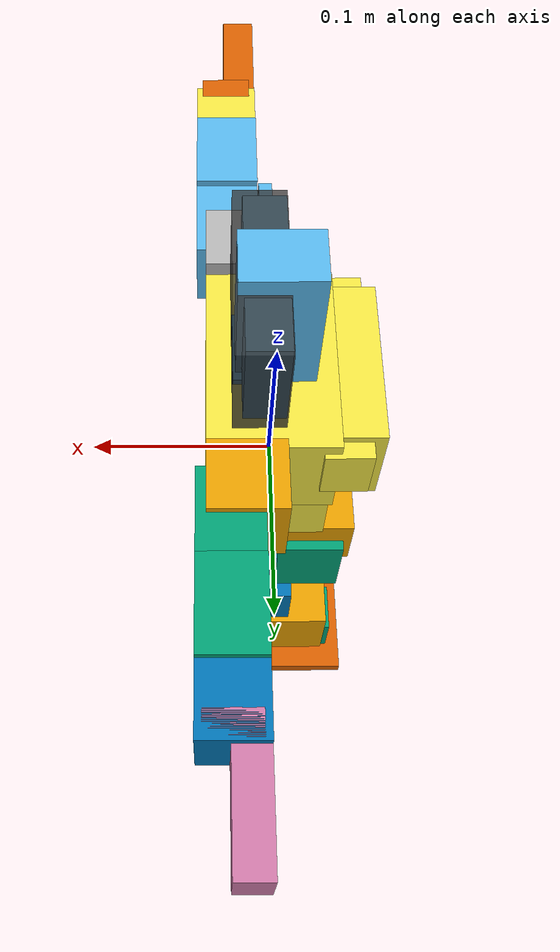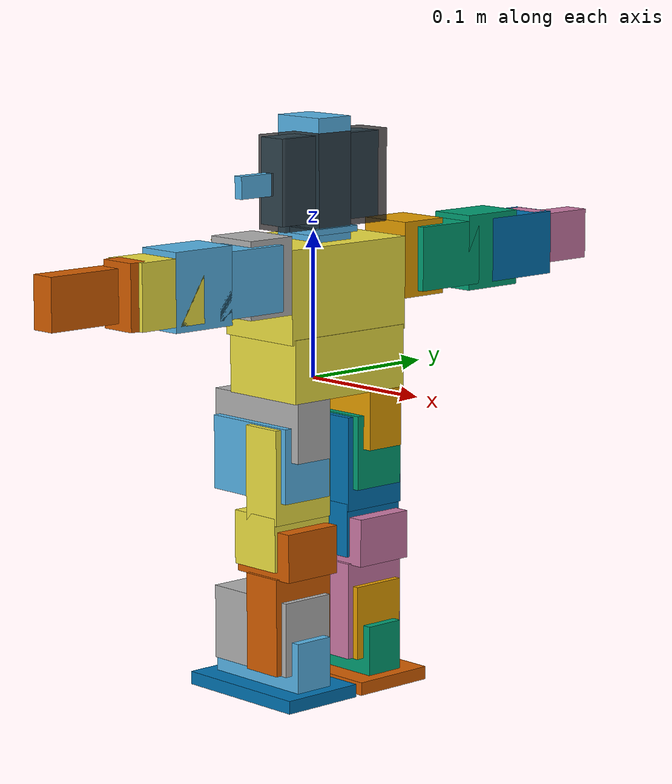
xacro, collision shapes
<?xml version="1.0"?>
<robot xmlns:xacro="http://www.ros.org/wiki/xacro" name="bioloid">

    <!-- Pi is now predefined -->
    <xacro:property name="cad_dir" value="file://$(find bioloid_master)/../../assets/cad"/>
    <!-- Typically, STL/DAE model units are in mm, but RViz units are in m, hence models must be scaled down by 1000. -->
    <xacro:macro name="default_geometry" params="cad_file suffix:=_FCD-Conv_BDR-Col extension:=dae">
        <geometry>
            <mesh filename="${cad_dir}/${cad_file}${suffix}.${extension}" scale="0.001 0.001 0.001"/>
        </geometry>
    </xacro:macro>
    <xacro:macro name="z_rot">
        <axis xyz="0 0 1"/>
    </xacro:macro>

    <!-- Select one and only one of the following include files -->
    <!-- 1) Standard parts of Bioloid Comprehensive humanoid with 18 AX-12+ servos, which have been replaced in custom version -->
    <!--    When using this URDF, ensure a transform from odom to base_link is being published -->
    <!-- 2) Custom parts of modified Bioloid Comprehensive humanoid, with CM-5 replaced by PC and custom sensors -->
    <!--    When using this URDF, ensure a transform from odom to imu_link is being published -->
    <xacro:include filename="$(find bioloid_master)/urdf/bioloid_custom_parts.xacro"/>

    <!-- Import gazebo_ros_control plugin -->
    <xacro:include filename="$(find bioloid_master)/urdf/bioloid_gazebo.xacro"/>

    <xacro:macro name="shoulder_swing_joint" params="prefix reflect">
        <joint name="${prefix}_shoulder_swing_joint" type="revolute">
            <parent link="torso_link"/>
            <origin xyz="${reflect*(-0.032)} 0 0" rpy="${reflect*(-pi/2)} 0 ${reflect*(pi/2)}"/>
            <xacro:z_rot/>
            <child link="${prefix}_shoulder_swing_link"/>
            <limit lower="${-pi}" upper="${pi}" effort="10" velocity="1.0"/>
        </joint>
    </xacro:macro>
    <xacro:macro name="shoulder_lateral_joint" params="prefix reflect">
        <joint name="${prefix}_shoulder_lateral_joint" type="revolute">
            <parent link="${prefix}_shoulder_swing_link"/>
            <origin xyz="${reflect*(-0.014)} 0 ${reflect*0.044}" rpy="${-pi/2} ${pi/2} 0"/>
            <xacro:z_rot/>
            <child link="${prefix}_upper_arm_link"/>
            <limit lower="${-pi}" upper="${pi}" effort="10" velocity="1.0"/>
        </joint>
    </xacro:macro>
    <xacro:macro name="elbow_joint" params="prefix reflect">
        <joint name="${prefix}_elbow_joint" type="revolute">
            <parent link="${prefix}_upper_arm_link"/>
            <origin xyz="${reflect*-0.0675} 0 0" rpy="0 0 0"/>
            <xacro:z_rot/>
            <child link="${prefix}_lower_arm_link"/>
            <limit lower="${-1.77}" upper="${1.77}" effort="10" velocity="1.0"/>
        </joint>
    </xacro:macro>
    <xacro:macro name="hand_joint" params="prefix">
        <joint name="${prefix}_hand_joint" type="fixed">
            <parent link="${prefix}_lower_arm_link"/>
            <origin xyz="0 0 0" rpy="0 0 0"/>
            <child link="${prefix}_hand_link"/>
        </joint>
    </xacro:macro>
    <xacro:macro name="hip_twist_joint" params="prefix reflect rotatex rotatez">
        <joint name="${prefix}_hip_twist_joint" type="revolute">
            <parent link="torso_link"/>
            <origin xyz="${reflect*(-0.033)} 0.016 -0.0655" rpy="${rotatex*pi} 0 ${rotatez*pi}"/>
            <xacro:z_rot/>
            <child link="${prefix}_hip_twist_link"/>
            <limit lower="${-pi/4}" upper="${pi/4}" effort="10" velocity="1.0"/>
        </joint>
    </xacro:macro>
    <xacro:macro name="hip_lateral_joint" params="prefix reflect">
        <joint name="${prefix}_hip_lateral_joint" type="revolute">
            <parent link="${prefix}_hip_twist_link"/>
            <origin xyz="0 -0.0153 ${reflect*0.05}" rpy="${reflect*pi/2} 0 0"/>
            <xacro:z_rot/>
            <child link="${prefix}_hip_lateral_link"/>
            <limit lower="${-0.3}" upper="${1.0}" effort="10" velocity="1.0"/>
        </joint>
    </xacro:macro>
    <xacro:macro name="hip_swing_joint" params="prefix reflect rotatex">
        <joint name="${prefix}_hip_swing_joint" type="revolute">
            <parent link="${prefix}_hip_lateral_link"/>
            <origin xyz="0 0 ${reflect*(-0.032)}" rpy="${rotatex*pi} ${-pi/2} 0"/>
            <xacro:z_rot/>
            <child link="${prefix}_upper_leg_link"/>
            <limit lower="${-pi/2}" upper="${1.9}" effort="10" velocity="1.0"/>
        </joint>
    </xacro:macro>
    <xacro:macro name="knee_joint" params="prefix reflect">
        <joint name="${prefix}_knee_joint" type="revolute">
            <parent link="${prefix}_upper_leg_link"/>
            <origin xyz="${reflect*0.0145} ${reflect*0.075} 0" rpy="0 0 0"/>
            <xacro:z_rot/>
            <child link="${prefix}_lower_leg_link"/>
            <limit lower="${-pi}" upper="${0}" effort="10" velocity="1.0"/>
        </joint>
    </xacro:macro>
    <xacro:macro name="ankle_swing_joint" params="prefix reflect">
        <joint name="${prefix}_ankle_swing_joint" type="revolute">
            <parent link="${prefix}_lower_leg_link"/>
            <origin xyz="${reflect*-0.0145} ${reflect*0.071} 0" rpy="0 0 0"/>
            <xacro:z_rot/>
            <child link="${prefix}_ankle_swing_link"/>
            <limit lower="${-0.45}" upper="${pi/2}" effort="10" velocity="1.0"/>
        </joint>
    </xacro:macro>
    <xacro:macro name="ankle_lateral_joint" params="prefix reflect">
        <joint name="${prefix}_ankle_lateral_joint" type="revolute">
            <parent link="${prefix}_ankle_swing_link"/>
            <origin xyz="${reflect*0.032} 0 0" rpy="0 ${pi/2} 0"/>
            <xacro:z_rot/>
            <child link="${prefix}_ankle_lateral_link"/>
            <limit lower="${-0.7}" upper="${0.7}" effort="10" velocity="1.0"/>
        </joint>
    </xacro:macro>
    <xacro:macro name="foot_joint" params="prefix">
        <joint name="${prefix}_foot_joint" type="fixed">
            <parent link="${prefix}_ankle_lateral_link"/>
            <origin xyz="0 0 0" rpy="0 0 0"/>
            <child link="${prefix}_foot_link"/>
        </joint>
    </xacro:macro>

    <!-- Base -->
    <joint name="base_to_torso_joint" type="fixed">
        <parent link="base_link"/>
        <origin xyz="0 0 0" rpy="0 0 ${pi/2}"/>
        <child link="torso_link"/>
    </joint>
    <link name="base_link">
    </link>

    <!-- Torso to right shoulder -->
    <xacro:shoulder_swing_joint prefix="right" reflect="1"/>
    <link name="right_shoulder_swing_link">
        <visual>
            <xacro:default_geometry cad_file="FP04-F1"/>
            <origin xyz="-0.014 0 0.044" rpy="0 ${pi} ${-pi/2}"/>
        </visual>
        <collision name="right_shoulder_collision">
            <origin xyz="-0.006 0 0.0375"/>
            <geometry>
                <box size="0.039 0.052 0.036"/>
            </geometry>
        </collision>
        <inertial>
            <origin xyz="0 0 0"/>
            <mass value="1.0"/>
            <inertia  ixx="0.001" ixy="0.0"  ixz="0.0"  iyy="0.001"  iyz="0.0"  izz="0.001"/>
        </inertial>
    </link>

    <!-- Torso to left shoulder -->
    <xacro:shoulder_swing_joint prefix="left" reflect="-1"/>
    <link name="left_shoulder_swing_link">
        <visual>
            <xacro:default_geometry cad_file="FP04-F1"/>
            <origin xyz="0.014 0 -0.044" rpy="0 0 ${pi/2}"/>
        </visual>
        <collision name="left_shoulder_collision">
            <origin xyz="0.006 0 -0.0375"/>
            <geometry>
                <box size="0.039 0.052 0.036"/>
            </geometry>
        </collision>
        <inertial>
            <origin xyz="0 0 0"/>
            <mass value="1.0"/>
            <inertia  ixx="0.001" ixy="0.0"  ixz="0.0"  iyy="0.001"  iyz="0.0"  izz="0.001"/>
        </inertial>
    </link>

    <!-- Right shoulder to upper arm -->
    <xacro:shoulder_lateral_joint prefix="right" reflect="1"/>
    <link name="right_upper_arm_link">
        <visual>
            <xacro:default_geometry cad_file="AX-12"/>
            <origin xyz="0 0 0" rpy="${pi} 0 ${pi/2}"/>
        </visual>
        <visual>
            <xacro:default_geometry cad_file="BPF-BU"/>
            <origin xyz="0 0 0.0185" rpy="${pi/2} 0 0"/>
        </visual>
        <visual>
            <xacro:default_geometry cad_file="BPF-WA"/>
            <origin xyz="0 0 0.019" rpy="${pi/2} 0 0"/>
        </visual>
        <visual>
            <xacro:default_geometry cad_file="FP04-F3"/>
            <origin xyz="-0.0415 0 0" rpy="0 0 ${-pi/2}"/>
        </visual>
        <visual>
            <xacro:default_geometry cad_file="FP04-F2"/>
            <origin xyz="-0.0675 0 0" rpy="0 ${pi/2} 0"/>
        </visual>
        <collision name="right_upper arm_collision_proximal">
            <origin xyz="-0.0148 0 0"/>
            <geometry>
                <box size="0.054 0.033 0.044"/>
            </geometry>
        </collision>
        <collision name="right_upper arm_collision_distal">
            <origin xyz="-0.0555 0 0"/>
            <geometry>
                <box size="0.047 0.033 0.052"/>
            </geometry>
        </collision>
        <inertial>
            <origin xyz="0 0 0"/>
            <mass value="1.0"/>
            <inertia  ixx="0.001" ixy="0.0"  ixz="0.0"  iyy="0.001"  iyz="0.0"  izz="0.001"/>
        </inertial>
    </link>

    <!-- Left shoulder to upper arm -->
    <xacro:shoulder_lateral_joint prefix="left" reflect="-1"/>
    <link name="left_upper_arm_link">
        <visual>
            <xacro:default_geometry cad_file="AX-12"/>
            <origin xyz="0 0 0" rpy="0 0 ${pi/2}"/>
        </visual>
        <visual>
            <xacro:default_geometry cad_file="BPF-BU"/>
            <origin xyz="0 0 -0.0185" rpy="${-pi/2} 0 0"/>
        </visual>
        <visual>
            <xacro:default_geometry cad_file="BPF-WA"/>
            <origin xyz="0 0 -0.019" rpy="${-pi/2} 0 0"/>
        </visual>
        <visual>
            <xacro:default_geometry cad_file="FP04-F3"/>
            <origin xyz="0.0415 0 0" rpy="0 0 ${pi/2}"/>
        </visual>
        <visual>
            <xacro:default_geometry cad_file="FP04-F2"/>
            <origin xyz="0.0675 0 0" rpy="0 ${-pi/2} 0"/>
        </visual>
        <collision name="left_upper arm_collision_proximal">
            <origin xyz="0.0148 0 0"/>
            <geometry>
                <box size="0.054 0.033 0.044"/>
            </geometry>
        </collision>
        <collision name="left_upper arm_collision_distal">
            <origin xyz="0.0555 0 0"/>
            <geometry>
                <box size="0.047 0.033 0.052"/>
            </geometry>
        </collision>
        <inertial>
            <origin xyz="0 0 0"/>
            <mass value="1.0"/>
            <inertia  ixx="0.001" ixy="0.0"  ixz="0.0"  iyy="0.001"  iyz="0.0"  izz="0.001"/>
        </inertial>
    </link>

    <!-- Right upper arm to lower arm -->
    <xacro:elbow_joint prefix="right" reflect="1"/>
    <link name="right_lower_arm_link">
        <!-- Motor 5 -->
        <visual>
            <xacro:default_geometry cad_file="AX-12"/>
            <origin xyz="0 0 0" rpy="${pi} 0 ${pi/2}"/>
        </visual>
        <visual>
            <xacro:default_geometry cad_file="BPF-BU"/>
            <origin xyz="0 0 0.0185" rpy="${pi/2} 0 0"/>
        </visual>
        <visual>
            <xacro:default_geometry cad_file="BPF-WA"/>
            <origin xyz="0 0 0.019" rpy="${pi/2} 0 0"/>
        </visual>
        <visual>
            <xacro:default_geometry cad_file="FP04-F3"/>
            <origin xyz="-0.0415 0 0" rpy="0 0 ${-pi/2}"/>
        </visual>
        <collision name="right_lower_arm_collision">
            <origin xyz="-0.0135 0 0"/>
            <geometry>
                <box size="0.051 0.033 0.044"/>
            </geometry>
        </collision>
        <inertial>
            <origin xyz="0 0 0"/>
            <mass value="1.0"/>
            <inertia  ixx="0.001" ixy="0.0"  ixz="0.0"  iyy="0.001"  iyz="0.0"  izz="0.001"/>
        </inertial>
    </link>

    <!-- Left upper arm to lower arm -->
    <xacro:elbow_joint prefix="left" reflect="-1"/>
    <link name="left_lower_arm_link">
        <!-- Motor 6 -->
        <visual>
            <xacro:default_geometry cad_file="AX-12"/>
            <origin xyz="0 0 0" rpy="0 0 ${pi/2}"/>
        </visual>
        <visual>
            <xacro:default_geometry cad_file="BPF-BU"/>
            <origin xyz="0 0 -0.0185" rpy="${-pi/2} 0 0"/>
        </visual>
        <visual>
            <xacro:default_geometry cad_file="BPF-WA"/>
            <origin xyz="0 0 -0.019" rpy="${-pi/2} 0 0"/>
        </visual>
        <visual>
            <xacro:default_geometry cad_file="FP04-F3"/>
            <origin xyz="0.0415 0 0" rpy="0 0 ${pi/2}"/>
        </visual>
        <collision name="left_lower_arm_collision">
            <origin xyz="0.017 0 0"/>
            <geometry>
                <box size="0.058 0.033 0.044"/>
            </geometry>
        </collision>
        <inertial>
            <origin xyz="0 0 0"/>
            <mass value="1.0"/>
            <inertia  ixx="0.001" ixy="0.0"  ixz="0.0"  iyy="0.001"  iyz="0.0"  izz="0.001"/>
        </inertial>
    </link>

    <!-- Right lower arm to hand -->
    <xacro:hand_joint prefix="right"/>
    <link name="right_hand_link">
        <visual>
            <xacro:default_geometry cad_file="FP04-F11"/>
            <origin xyz="-0.0415 0 0" rpy="${-pi} ${pi/2} 0"/>
        </visual>
        <collision name="right_palm_collision">
            <origin xyz="-0.039 0 0"/>
            <geometry>
                <box size="0.0131 0.0265 0.044"/>
            </geometry>
        </collision>
        <collision name="right_fingers_collision">
            <origin xyz="-0.0701 -0.0077 0"/>
            <geometry>
                <box size="0.0575 0.0175 0.035"/>
            </geometry>
        </collision>
        <inertial>
            <origin xyz="0 0 0"/>
            <mass value="1.0"/>
            <inertia  ixx="0.001" ixy="0.0"  ixz="0.0"  iyy="0.001"  iyz="0.0"  izz="0.001"/>
        </inertial>
    </link>

    <!-- Left lower arm to hand -->
    <xacro:hand_joint prefix="left"/>
    <link name="left_hand_link">
        <visual>
            <xacro:default_geometry cad_file="FP04-F11"/>
            <origin xyz="0.0415 0 0" rpy="0 ${pi/2} 0"/>
        </visual>
        <collision name="left_palm_collision">
            <origin xyz="0.039 0 0"/>
            <geometry>
                <box size="0.0131 0.0265 0.044"/>
            </geometry>
        </collision>
        <collision name="left_fingers_collision">
            <origin xyz="0.0701 0.0077 0"/>
            <geometry>
                <box size="0.0575 0.0175 0.035"/>
            </geometry>
        </collision>
        <inertial>
            <origin xyz="0 0 0"/>
            <mass value="1.0"/>
            <inertia  ixx="0.001" ixy="0.0"  ixz="0.0"  iyy="0.001"  iyz="0.0"  izz="0.001"/>
        </inertial>
    </link>

    <!-- Torso to right hip twist -->
    <xacro:hip_twist_joint prefix="right" reflect="1" rotatex="1" rotatez="0"/>
    <link name="right_hip_twist_link">
        <visual>
            <xacro:default_geometry cad_file="FP04-F5"/>
            <origin xyz="0 0 0.05" rpy="${pi} 0 0"/>
        </visual>
        <collision name="right_hip_twist_collision">
            <origin xyz="0 0.0008 0.041"/>
            <geometry>
                <box size="0.029 0.083 0.0405"/>
            </geometry>
        </collision>
        <inertial>
            <origin xyz="0 0 0"/>
            <mass value="1.0"/>
            <inertia  ixx="0.001" ixy="0.0"  ixz="0.0"  iyy="0.001"  iyz="0.0"  izz="0.001"/>
        </inertial>
    </link>

    <!-- Torso to left hip twist -->
    <xacro:hip_twist_joint prefix="left" reflect="-1" rotatex="0" rotatez="1"/>
    <link name="left_hip_twist_link">
        <visual>
            <xacro:default_geometry cad_file="FP04-F5"/>
            <origin xyz="0 0 -0.05" rpy="0 0 ${pi}"/>
        </visual>
        <collision name="left_hip_twist_collision">
            <origin xyz="0 0.0008 -0.041"/>
            <geometry>
                <box size="0.029 0.083 0.0405"/>
            </geometry>
        </collision>
        <inertial>
            <origin xyz="0 0 0"/>
            <mass value="1.0"/>
            <inertia  ixx="0.001" ixy="0.0"  ixz="0.0"  iyy="0.001"  iyz="0.0"  izz="0.001"/>
        </inertial>
    </link>

    <!-- Right hip twist to hip lateral -->
    <xacro:hip_lateral_joint prefix="right" reflect="1"/>
    <link name="right_hip_lateral_link">
        <!-- Motor 9 -->
        <visual>
            <xacro:default_geometry cad_file="AX-12"/>
            <origin xyz="0 0 0" rpy="0 0 ${pi}"/>
        </visual>
        <visual>
            <xacro:default_geometry cad_file="FP04-F6"/>
            <origin xyz="-0.019 0.0145 0.016" rpy="0 ${-pi/2} ${-pi/2}"/>
        </visual>
        <visual>
            <xacro:default_geometry cad_file="FP04-F6"/>
            <origin xyz="0.019 0.0145 0.016" rpy="0 ${-pi/2} ${pi/2}"/>
        </visual>
        <!-- Motor 11 -->
        <visual>
            <xacro:default_geometry cad_file="AX-12"/>
            <origin xyz="0 0 -0.032" rpy="${pi} ${-pi/2} 0"/>
        </visual>
        <visual>
            <xacro:default_geometry cad_file="BPF-BU"/>
            <origin xyz="0 0 -0.05" rpy="${-pi/2} 0 0"/>
        </visual>
        <visual>
            <xacro:default_geometry cad_file="FP04-F7"/>
            <origin xyz="0 0.0145 -0.051" rpy="${pi/2} 0 ${-pi/2}"/>
        </visual>
        <collision name="right_hip_lateral_collision">
            <origin xyz="0 0.0135 -0.0153"/>
            <geometry>
                <box size="0.04 0.051 0.0721"/>
            </geometry>
        </collision>
        <inertial>
            <origin xyz="0 0 0"/>
            <mass value="1.0"/>
            <inertia  ixx="0.001" ixy="0.0"  ixz="0.0"  iyy="0.001"  iyz="0.0"  izz="0.001"/>
        </inertial>
    </link>

    <!-- Left hip twist to hip lateral -->
    <xacro:hip_lateral_joint prefix="left" reflect="-1"/>
    <link name="left_hip_lateral_link">
        <!-- Motor 10 -->
        <visual>
            <xacro:default_geometry cad_file="AX-12"/>
            <origin xyz="0 0 0" rpy="${pi} 0 0"/>
        </visual>
        <visual>
            <xacro:default_geometry cad_file="FP04-F6"/>
            <origin xyz="-0.019 0.0145 -0.016" rpy="0 ${pi/2} ${-pi/2}"/>
        </visual>
        <visual>
            <xacro:default_geometry cad_file="FP04-F6"/>
            <origin xyz="0.019 0.0145 -0.016" rpy="0 ${pi/2} ${pi/2}"/>
        </visual>
        <!-- Motor 12 -->
        <visual>
            <xacro:default_geometry cad_file="AX-12"/>
            <origin xyz="0 0 0.032" rpy="${pi} ${-pi/2} 0"/>
        </visual>
        <visual>
            <xacro:default_geometry cad_file="BPF-BU"/>
            <origin xyz="0 0 0.05" rpy="${pi/2} 0 0"/>
        </visual>
        <visual>
            <xacro:default_geometry cad_file="FP04-F7"/>
            <origin xyz="0 0.0145 0.051" rpy="${-pi/2} 0 ${-pi/2}"/>
        </visual>
        <collision name="left_hip_lateral_collision">
            <origin xyz="0 0.0135 0.0153"/>
            <geometry>
                <box size="0.04 0.051 0.0721"/>
            </geometry>
        </collision>
        <inertial>
            <origin xyz="0 0 0"/>
            <mass value="1.0"/>
            <inertia  ixx="0.001" ixy="0.0"  ixz="0.0"  iyy="0.001"  iyz="0.0"  izz="0.001"/>
        </inertial>
    </link>

    <!-- Right hip lateral to upper leg -->
    <xacro:hip_swing_joint prefix="right" reflect="1" rotatex="0"/>
    <link name="right_upper_leg_link">
        <visual>
            <xacro:default_geometry cad_file="FP04-F4"/>
            <origin xyz="0 0 0" rpy="${-pi/2} ${pi/2} 0"/>
        </visual>
        <visual>
            <xacro:default_geometry cad_file="FP04-F1"/>
            <origin xyz="0.0145 0.075 0" rpy="${pi/2} ${-pi/2} 0"/>
        </visual>
        <collision name="right_upper_leg_proximal_collision">
            <origin xyz="0 0.0214 0"/>
            <geometry>
                <box size="0.03 0.065 0.049"/>
            </geometry>
        </collision>
        <collision name="right_upper_leg_distal_collision">
            <origin xyz="0.0065 0.0675 0"/>
            <geometry>
                <box size="0.04 0.0371 0.049"/>
            </geometry>
        </collision>
        <inertial>
            <origin xyz="0 0 0"/>
            <mass value="1.0"/>
            <inertia  ixx="0.001" ixy="0.0"  ixz="0.0"  iyy="0.001"  iyz="0.0"  izz="0.001"/>
        </inertial>
    </link>

    <!-- Left hip lateral to upper leg -->
    <xacro:hip_swing_joint prefix="left" reflect="-1" rotatex="1"/>
    <link name="left_upper_leg_link">
        <visual>
            <xacro:default_geometry cad_file="FP04-F4"/>
            <origin xyz="0 0 0" rpy="${pi/2} ${pi/2} 0"/>
        </visual>
        <visual>
            <xacro:default_geometry cad_file="FP04-F1"/>
            <origin xyz="-0.0145 -0.075 0" rpy="${-pi/2} ${-pi/2} 0"/>
        </visual>
        <collision name="left_upper_leg_proximal_collision">
            <origin xyz="0 -0.0214 0"/>
            <geometry>
                <box size="0.03 0.065 0.049"/>
            </geometry>
        </collision>
        <collision name="left_upper_leg_distal_collision">
            <origin xyz="-0.0065 -0.0675 0"/>
            <geometry>
                <box size="0.04 0.0371 0.049"/>
            </geometry>
        </collision>
        <inertial>
            <origin xyz="0 0 0"/>
            <mass value="1.0"/>
            <inertia  ixx="0.001" ixy="0.0"  ixz="0.0"  iyy="0.001"  iyz="0.0"  izz="0.001"/>
        </inertial>
    </link>

    <!-- Right upper leg to lower leg -->
    <xacro:knee_joint prefix="right" reflect="1"/>
    <link name="right_lower_leg_link">
        <!-- Motor 13 -->
        <visual>
            <xacro:default_geometry cad_file="AX-12"/>
            <origin xyz="0 0 0" rpy="0 ${pi} ${-pi/2}"/>
        </visual>
        <visual>
            <xacro:default_geometry cad_file="FP04-F3"/>
            <origin xyz="-0.0145 0.019 0" rpy="0 0 ${pi}"/>
        </visual>
        <visual>
            <xacro:default_geometry cad_file="FP04-F4"/>
            <origin xyz="-0.0145 0.071 0" rpy="${pi/2} ${-pi/2} 0"/>
        </visual>
        <collision name="right_lower_leg_proximal_collision">
            <origin xyz="-0.0135 0 0"/>
            <geometry>
                <box size="0.051 0.033 0.044"/>
            </geometry>
        </collision>
        <collision name="right_lower_leg_distal_collision">
            <origin xyz="-0.0145 0.0492 0"/>
            <geometry>
                <box size="0.03 0.067 0.049"/>
            </geometry>
        </collision>
        <inertial>
            <origin xyz="0 0 0"/>
            <mass value="1.0"/>
            <inertia  ixx="0.001" ixy="0.0"  ixz="0.0"  iyy="0.001"  iyz="0.0"  izz="0.001"/>
        </inertial>
    </link>

    <!-- Left upper leg to lower leg -->
    <xacro:knee_joint prefix="left" reflect="-1"/>
    <link name="left_lower_leg_link">
        <!-- Motor 14 -->
        <visual>
            <xacro:default_geometry cad_file="AX-12"/>
            <origin xyz="0 0 0" rpy="0 0 ${pi/2}"/>
        </visual>
        <visual>
            <xacro:default_geometry cad_file="FP04-F3"/>
            <origin xyz="0.0145 -0.019 0" rpy="0 0 0"/>
        </visual>
        <visual>
            <xacro:default_geometry cad_file="FP04-F4"/>
            <origin xyz="0.0145 -0.071 0" rpy="${-pi/2} ${-pi/2} 0"/>
        </visual>
        <collision name="left_lower_leg_proximal_collision">
            <origin xyz="0.0135 0 0"/>
            <geometry>
                <box size="0.051 0.033 0.044"/>
            </geometry>
        </collision>
        <collision name="left_lower_leg_distal_collision">
            <origin xyz="0.0145 -0.0492 0"/>
            <geometry>
                <box size="0.03 0.067 0.049"/>
            </geometry>
        </collision>
        <inertial>
            <origin xyz="0 0 0"/>
            <mass value="1.0"/>
            <inertia  ixx="0.001" ixy="0.0"  ixz="0.0"  iyy="0.001"  iyz="0.0"  izz="0.001"/>
        </inertial>
    </link>

    <!-- Right lower leg to ankle swing -->
    <xacro:ankle_swing_joint prefix="right" reflect="1"/>
    <link name="right_ankle_swing_link">
        <!-- Motor 15 -->
        <visual>
            <xacro:default_geometry cad_file="AX-12"/>
            <origin xyz="0 0 0" rpy="0 ${pi} 0"/>
        </visual>
        <visual>
            <xacro:default_geometry cad_file="FP04-F7"/>
            <origin xyz="-0.019 -0.0145 0" rpy="${pi} 0 ${pi/2}"/>
        </visual>
        <!-- Motor 17 -->
        <visual>
            <xacro:default_geometry cad_file="AX-12"/>
            <origin xyz="0.032 0 0" rpy="0 ${pi/2} 0"/>
        </visual>
        <visual>
            <xacro:default_geometry cad_file="FP04-F6"/>
            <origin xyz="0.048 -0.0145 0.019" rpy="${-pi/2} 0 0"/>
        </visual>
        <visual>
            <xacro:default_geometry cad_file="FP04-F6"/>
            <origin xyz="0.048 -0.0145 -0.019" rpy="${pi/2} 0 0"/>
        </visual>
        <collision name="right_ankle_swing_collision">
            <origin xyz="0.0167 -0.0135 0"/>
            <geometry>
                <box size="0.0721 0.051 0.04"/>
            </geometry>
        </collision>
        <inertial>
            <origin xyz="0 0 0"/>
            <mass value="1.0"/>
            <inertia  ixx="0.001" ixy="0.0"  ixz="0.0"  iyy="0.001"  iyz="0.0"  izz="0.001"/>
        </inertial>
    </link>

    <!-- Left lower leg to ankle swing -->
    <xacro:ankle_swing_joint prefix="left" reflect="-1"/>
    <link name="left_ankle_swing_link">
        <!-- Motor 16 -->
        <visual>
            <xacro:default_geometry cad_file="AX-12"/>
            <origin xyz="0 0 0" rpy="0 0 ${pi}"/>
        </visual>
        <visual>
            <xacro:default_geometry cad_file="FP04-F7"/>
            <origin xyz="0.019 0.0145 0" rpy="${pi} 0 ${-pi/2}"/>
        </visual>
        <!-- Motor 18 -->
        <visual>
            <xacro:default_geometry cad_file="AX-12"/>
            <origin xyz="-0.032 0 0" rpy="${pi} ${pi/2} 0"/>
        </visual>
        <visual>
            <xacro:default_geometry cad_file="FP04-F6"/>
            <origin xyz="-0.048 0.0145 -0.019" rpy="${pi/2} 0 ${pi}"/>
        </visual>
        <visual>
            <xacro:default_geometry cad_file="FP04-F6"/>
            <origin xyz="-0.048 0.0145 0.019" rpy="${-pi/2} 0 ${pi}"/>
        </visual>
        <collision name="left_ankle_swing_collision">
            <origin xyz="-0.0167 0.0135 0"/>
            <geometry>
                <box size="0.0721 0.051 0.04"/>
            </geometry>
        </collision>
        <inertial>
            <origin xyz="0 0 0"/>
            <mass value="1.0"/>
            <inertia  ixx="0.001" ixy="0.0"  ixz="0.0"  iyy="0.001"  iyz="0.0"  izz="0.001"/>
        </inertial>
    </link>

    <!-- Right ankle swing to ankle lateral -->
    <xacro:ankle_lateral_joint prefix="right" reflect="1"/>
    <link name="right_ankle_lateral_link">
        <visual>
            <xacro:default_geometry cad_file="BPF-BU"/>
            <origin xyz="0 0 -0.05" rpy="${-pi/2} 0 0"/>
        </visual>
        <visual>
            <xacro:default_geometry cad_file="FP04-F5"/>
            <origin xyz="0 0 -0.0153" rpy="${-pi/2} ${pi} 0"/>
        </visual>
        <collision name="right_ankle_lateral_collision">
            <origin xyz="0 0.009 -0.016"/>
            <geometry>
                <box size="0.029 0.0405 0.083"/>
            </geometry>
        </collision>
        <inertial>
            <origin xyz="0 0 0"/>
            <mass value="1.0"/>
            <inertia  ixx="0.001" ixy="0.0"  ixz="0.0"  iyy="0.001"  iyz="0.0"  izz="0.001"/>
        </inertial>
    </link>

    <!-- Left ankle swing to ankle lateral -->
    <xacro:ankle_lateral_joint prefix="left" reflect="-1"/>
    <link name="left_ankle_lateral_link">
        <visual>
            <xacro:default_geometry cad_file="BPF-BU"/>
            <origin xyz="0 0 0.05" rpy="${pi/2} 0 0"/>
        </visual>
        <visual>
            <xacro:default_geometry cad_file="FP04-F5"/>
            <origin xyz="0 0 0.0153" rpy="${pi/2} ${pi} 0"/>
        </visual>
        <collision name="left_ankle_lateral_collision">
            <origin xyz="0 -0.009 0.016"/>
            <geometry>
                <box size="0.029 0.0405 0.083"/>
            </geometry>
        </collision>
        <inertial>
            <origin xyz="0 0 0"/>
            <mass value="1.0"/>
            <inertia  ixx="0.001" ixy="0.0"  ixz="0.0"  iyy="0.001"  iyz="0.0"  izz="0.001"/>
        </inertial>
    </link>

    <!-- Right ankle lateral to foot -->
    <xacro:foot_joint prefix="right"/>

    <!-- Left ankle lateral to foot -->
    <xacro:foot_joint prefix="left"/>

</robot>

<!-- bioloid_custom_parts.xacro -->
<!-- Custom Bioloid parts -->
<robot xmlns:xacro="http://www.ros.org/wiki/xacro">

    <!-- IMU -->
    <joint name="imu_to_base_joint" type="fixed">
        <parent link="imu_link"/>
        <origin xyz="0.01 0 0.0788" rpy="0 0 0"/>
        <child link="base_link"/>
    </joint>
    <link name="imu_link">
        <visual>
            <geometry>
                <box size="0.04 0.02 0.005"/>
            </geometry>
            <material name="green">
                <color rgba="0.0 1.0 0.0 1.0"/>
            </material>
        </visual>
    </link>

    <!-- Camera -->

    <!-- Head -->
    <joint name="head_joint" type="fixed">
        <origin xyz="0 0 0.058" rpy="0 0 0"/>
        <parent link="base_link"/>
        <child link="head_link"/>
    </joint>
    <link name="head_link">
        <visual>
            <xacro:default_geometry cad_file="FP04-F5"/>
            <origin xyz="0 0 0" rpy="${pi/2} 0 ${-pi/2}"/>
        </visual>
        <visual>
            <xacro:default_geometry cad_file="FP04-F10"/>
            <origin xyz="0 0 -0.0342" rpy="${pi/2} 0 ${-pi/2}"/>
        </visual>
        <visual>
            <xacro:default_geometry cad_file="RaspPiB_plus_3d_step_V10" suffix="_FCD-Conv"/>
            <origin xyz="-0.008 0 0" rpy="${-pi/2} 0 ${-pi/2}"/>
        </visual>
        <visual>
            <xacro:default_geometry cad_file="USB2AX-v3.1"/>
            <origin xyz="-0.0075 -0.0601 -0.001" rpy="0 ${pi/2} 0"/>
        </visual>
        <collision name="head_bracket_collision">
            <origin xyz="-0.009 0 0"/>
            <geometry>
                <box size="0.0405 0.029 0.083"/>
            </geometry>
        </collision>
        <collision name="head_spacer_collision">
            <origin xyz="0 0 -0.0342"/>
            <geometry>
                <box size="0.0251 0.0383 0.0041"/>
            </geometry>
        </collision>
        <collision name="raspberry_pi_collision">
            <origin xyz="-0.0023 -0.0008 0.0008"/>
            <geometry>
                <box size="0.021 0.087 0.058"/>
            </geometry>
        </collision>
        <collision name="usb2ax_collision">
            <origin xyz="-0.0042 -0.05355 -0.001"/>
            <geometry>
                <box size="0.00661 0.037 0.0151"/>
            </geometry>
        </collision>
        <inertial>
            <origin xyz="0 0 0"/>
            <mass value="1.0"/>
            <inertia  ixx="0.001" ixy="0.0"  ixz="0.0"  iyy="0.001"  iyz="0.0"  izz="0.001"/>
        </inertial>
    </link>

    <!-- CPU case -->
    <joint name="cpu_case_joint" type="fixed">
        <origin xyz="0 0 0.058" rpy="0 0 0"/>
        <parent link="base_link"/>
        <child link="cpu_case_link"/>
    </joint>
    <link name="cpu_case_link">
        <visual>
            <origin xyz="0 0 0"/>
            <geometry>
                <box size="0.026 0.092 0.063"/>
            </geometry>
            <material name="smoke_grey_transp">
                <color rgba="0.2 0.2 0.2 0.8"/>
            </material>
        </visual>
        <collision name="cpu_case_collision">
            <origin xyz="0 0 0"/>
            <geometry>
                <box size="0.026 0.092 0.063"/>
            </geometry>
        </collision>
        <inertial>
            <origin xyz="0 0 0"/>
            <mass value="1.0"/>
            <inertia  ixx="0.001" ixy="0.0"  ixz="0.0"  iyy="0.001"  iyz="0.0"  izz="0.001"/>
        </inertial>
    </link>

    <!-- Torso -->
    <link name="torso_link">
        <visual>
            <xacro:default_geometry cad_file="BPF-CHEST-F"/>
            <origin rpy="${pi/2} 0 0"/>
        </visual>
        <visual>
            <xacro:default_geometry cad_file="BPF-CHEST-B"/>
            <origin rpy="${pi/2} 0 0"/>
        </visual>
        <visual>
            <xacro:default_geometry cad_file="Backpack-DX"/>
            <origin xyz="0 0.019 -0.0145" rpy="0 0 ${pi/2}"/>
        </visual>
        <visual>
            <xacro:default_geometry cad_file="Battery-Turnigy-2200mAh"/>
            <origin xyz="0 0.032 -0.008" rpy="0 ${pi/2} ${pi/2}"/>
        </visual>
        <!-- Motor 1 -->
        <visual>
            <xacro:default_geometry cad_file="AX-12"/>
            <origin xyz="-0.032 0 0" rpy="${pi/2} 0 ${-pi/2}"/>
        </visual>
        <visual>
            <xacro:default_geometry cad_file="FP04-F3"/>
            <origin xyz="-0.032 0.019 -0.0145" rpy="${pi} ${-pi/2} 0"/>
        </visual>
        <!-- Motor 2 -->
        <visual>
            <xacro:default_geometry cad_file="AX-12"/>
            <origin xyz="0.032 0 0" rpy="${pi/2} 0 ${pi/2}"/>
        </visual>
        <visual>
            <xacro:default_geometry cad_file="FP04-F3"/>
            <origin xyz="0.032 0.019 -0.0145" rpy="${pi} ${-pi/2} 0"/>
        </visual>
        <visual>
            <xacro:default_geometry cad_file="FP04-F8"/>
            <origin xyz="0 0.0255 -0.0465" rpy="${-pi/2} 0 ${pi/2}"/>
        </visual>
        <visual>
            <xacro:default_geometry cad_file="FP04-F8"/>
            <origin xyz="0 0.0255 -0.0843" rpy="${pi/2} 0 ${pi/2}"/>
        </visual>
        <!-- Motor 7 -->
        <visual>
            <xacro:default_geometry cad_file="AX-12"/>
            <origin xyz="-0.033 0.016 -0.0655" rpy="0 ${pi} 0"/>
        </visual>
        <!-- Motor 8 -->
        <visual>
            <xacro:default_geometry cad_file="AX-12"/>
            <origin xyz="0.033 0.016 -0.0655" rpy="0 ${pi} 0"/>
        </visual>
        <collision name="torso_collision_top">
            <origin xyz="0 0.0075 -0.015"/>
            <geometry>
                <box size="0.103 0.066 0.0635"/>
            </geometry>
        </collision>
        <collision name="Backpack-DX_collision">
            <origin xyz="0 0.041 -0.0145"/>
            <geometry>
                <box size="0.09 0.0441 0.058"/>
            </geometry>
        </collision>
        <collision name="Battery-Turnigy-2200mAh_collision">
            <origin xyz="0 0.04425 -0.008"/>
            <geometry>
                <box size="0.108 0.0246 0.036"/>
            </geometry>
        </collision>
        <collision name="Battery-Turnigy-2200mAh_collision_lead">
            <origin xyz="-0.0515 0.04425 -0.031"/>
            <geometry>
                <box size="0.0041 0.0246 0.01"/>
            </geometry>
        </collision>
        <collision name="torso_collision_bottom">
            <origin xyz="0 0.00625 -0.0648"/>
            <geometry>
                <box size="0.099 0.065 0.043"/>
            </geometry>
        </collision>
        <inertial>
            <origin xyz="0 0 0"/>
            <mass value="1.0"/>
            <inertia  ixx="0.001" ixy="0.0"  ixz="0.0"  iyy="0.001"  iyz="0.0"  izz="0.001"/>
        </inertial>
    </link>

    <!-- Right foot -->
    <link name="right_foot_link">
        <visual>
            <xacro:default_geometry cad_file="FP04-F12"/>
            <origin xyz="0 0.0235 -0.016" rpy="0 ${-pi/2} 0"/>
        </visual>
        <!-- FSR 0 -->
        <visual>
            <xacro:default_geometry cad_file="34-47021_FSR_400_Short_Tail"/>
            <origin xyz="0.022 0.0319 -0.039" rpy="${pi} 0 0"/>
        </visual>
        <!-- FSR 1 -->
        <visual>
            <xacro:default_geometry cad_file="34-47021_FSR_400_Short_Tail"/>
            <origin xyz="-0.022 0.0319 -0.039" rpy="${pi} 0 0"/>
        </visual>
        <!-- FSR 2 -->
        <visual>
            <xacro:default_geometry cad_file="34-47021_FSR_400_Short_Tail"/>
            <origin xyz="-0.022 0.0319 0.007" rpy="${pi} ${pi} 0"/>
        </visual>
        <collision name="right_foot_collision">
            <origin xyz="0 0.0277 -0.016"/>
            <geometry>
                <box size="0.061 0.009 0.101"/>
            </geometry>
        </collision>
        <inertial>
            <origin xyz="0 0 0"/>
            <mass value="1.0"/>
            <inertia  ixx="0.001" ixy="0.0"  ixz="0.0"  iyy="0.001"  iyz="0.0"  izz="0.001"/>
        </inertial>
    </link>

    <!-- Left foot -->
    <link name="left_foot_link">
        <visual>
            <xacro:default_geometry cad_file="FP04-F12"/>
            <origin xyz="0 -0.0235 0.016" rpy="${pi} ${pi/2} 0"/>
        </visual>
        <!-- FSR 3 -->
        <visual>
            <xacro:default_geometry cad_file="34-47021_FSR_400_Short_Tail"/>
            <origin xyz="-0.022 -0.0319 0.039" rpy="0 0 0"/>
        </visual>
        <!-- FSR 4 -->
        <visual>
            <xacro:default_geometry cad_file="34-47021_FSR_400_Short_Tail"/>
            <origin xyz="0.022 -0.0319 0.039" rpy="0 0 0"/>
        </visual>
        <!-- FSR 5 -->
        <visual>
            <xacro:default_geometry cad_file="34-47021_FSR_400_Short_Tail"/>
            <origin xyz="0.022 -0.0319 -0.007" rpy="0 ${pi} 0"/>
        </visual>
        <collision name="left_foot_collision">
            <origin xyz="0 -0.0277 0.016"/>
            <geometry>
                <box size="0.061 0.009 0.101"/>
            </geometry>
        </collision>
        <inertial>
            <origin xyz="0 0 0"/>
            <mass value="1.0"/>
            <inertia  ixx="0.001" ixy="0.0"  ixz="0.0"  iyy="0.001"  iyz="0.0"  izz="0.001"/>
        </inertial>
    </link>

</robot>
